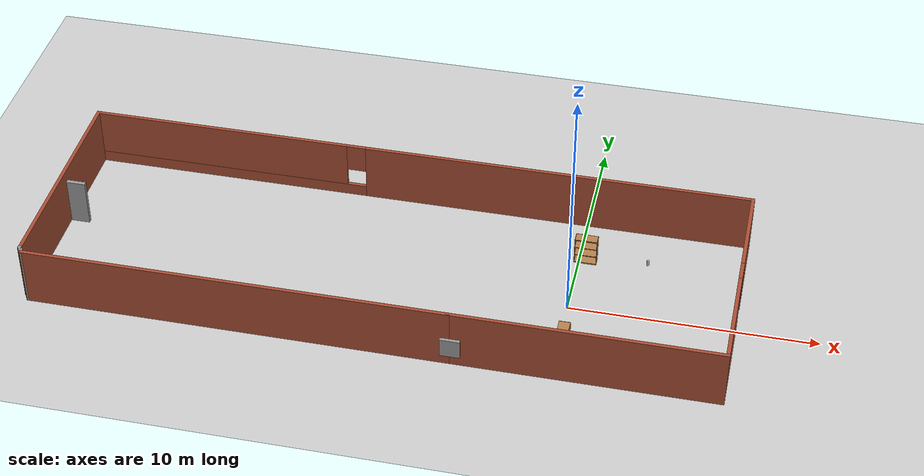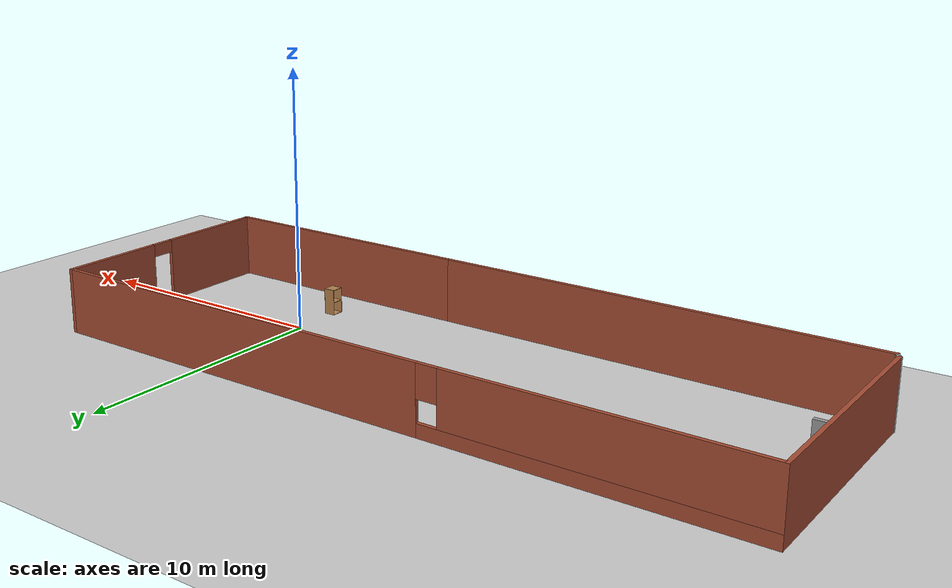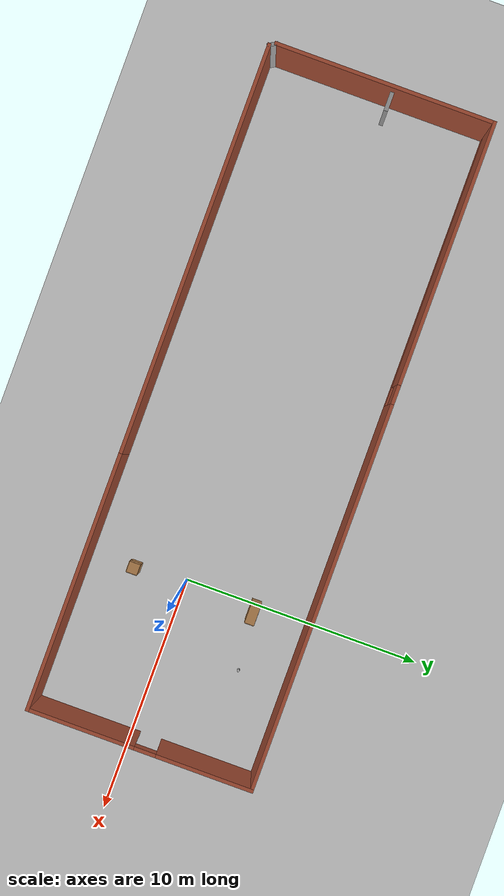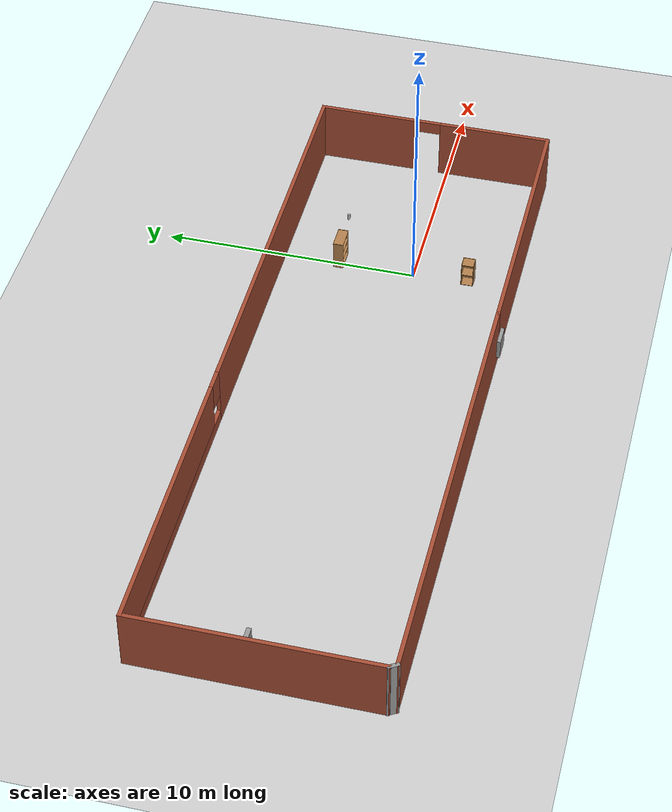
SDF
<sdf version="1.7">
 <world name="default">
  <light name="sun" type="directional">
   <pose>0 0 10 0 -0 0</pose>
   <diffuse>0.8 0.8 0.8 1</diffuse>
   <specular>0.2 0.2 0.2 1</specular>
   <attenuation>
    <range>1000</range>
    <constant>0.9</constant>
    <linear>0.01</linear>
    <quadratic>0.001</quadratic>
   </attenuation>
   <direction>-0.5 0.1 -0.9</direction>
   <spot><inner_angle>0</inner_angle><outer_angle>0</outer_angle><falloff>0</falloff></spot>
  </light>
  <model name="ground_plane">
   <static>1</static>
   <link name="link">
    <collision name="collision">
     <geometry><plane><normal>0 0 1</normal><size>100 100</size></plane></geometry>
     <surface>
      <contact><collide_bitmask>65535</collide_bitmask></contact>
      <friction><ode><mu>100</mu><mu2>50</mu2></ode></friction>
     </surface>
    </collision>
    <visual name="visual">
     <cast_shadows>0</cast_shadows>
     <geometry><plane><normal>0 0 1</normal><size>100 100</size></plane></geometry>
     <material>
      <script><uri>file://media/materials/scripts/gazebo.material</uri><name>Gazebo/Grey</name></script>
     </material>
    </visual>
   </link>
  </model>
  <gravity>0 0 -9.8</gravity>
  <magnetic_field>6e-06 2.3e-05 -4.2e-05</magnetic_field>
  <atmosphere type="adiabatic"/>
  <physics type="ode">
   <max_step_size>0.001</max_step_size>
   <real_time_factor>1</real_time_factor>
   <real_time_update_rate>1000</real_time_update_rate>
  </physics>
  <scene><ambient>0.4 0.4 0.4 1</ambient><background>0.7 0.7 0.7 1</background><shadows>1</shadows></scene>
  <audio><device>default</device></audio>
  <spherical_coordinates>
   <surface_model>EARTH_WGS84</surface_model>
   <latitude_deg>0</latitude_deg>
   <longitude_deg>0</longitude_deg>
   <elevation>0</elevation>
   <heading_deg>0</heading_deg>
  </spherical_coordinates>
  <model name="test">
   <pose>-7.3163 0.588552 0 0 -0 0</pose>
   <link name="Door_0">
    <collision name="Door_0_Collision">
     <geometry><box><size>0.9 0.17 2</size></box></geometry>
     <pose>0 0 1 0 -0 0</pose>
    </collision>
    <visual name="Door_0_Visual">
     <pose>0 0 1 0 -0 0</pose>
     <geometry><box><size>0.9 0.17 2</size></box></geometry>
     <material>
      <script><uri>file://media/materials/scripts/gazebo.material</uri><name>Gazebo/Grey</name></script>
     </material>
    </visual>
    <pose>-13.5036 0.511208 0 0 -0 0</pose>
   </link>
   <link name="Wall_3">
    <collision name="Wall_3_Collision">
     <geometry><box><size>10.75 0.15 2.5</size></box></geometry>
     <pose>0 0 1.25 0 -0 0</pose>
    </collision>
    <visual name="Wall_3_Visual">
     <pose>0 0 1.25 0 -0 0</pose>
     <geometry><box><size>10.75 0.15 2.5</size></box></geometry>
     <material>
      <script><uri>file://media/materials/scripts/gazebo.material</uri><name>Gazebo/Bricks</name></script>
      <ambient>1 1 1 1</ambient>
     </material>
     <meta><layer>0</layer></meta>
    </visual>
    <pose>8.63895 -4.66105 0 0 -0 0</pose>
   </link>
   <link name="Wall_4">
    <pose>13.9389 0.013949 0 0 -0 1.5708</pose>
    <visual name="Wall_4_Visual_0">
     <pose>-2.49296 0 1.25 0 -0 0</pose>
     <geometry><box><size>4.51407 0.15 2.5</size></box></geometry>
     <material>
      <script><uri>file://media/materials/scripts/gazebo.material</uri><name>Gazebo/Bricks</name></script>
      <ambient>1 1 1 1</ambient>
     </material>
     <meta><layer>0</layer></meta>
    </visual>
    <collision name="Wall_4_Collision_0">
     <geometry><box><size>4.51407 0.15 2.5</size></box></geometry>
     <pose>-2.49296 0 1.25 0 -0 0</pose>
    </collision>
    <visual name="Wall_4_Visual_1">
     <pose>2.70703 0 1.25 0 -0 0</pose>
     <geometry><box><size>4.08593 0.15 2.5</size></box></geometry>
     <material>
      <script><uri>file://media/materials/scripts/gazebo.material</uri><name>Gazebo/Bricks</name></script>
      <ambient>1 1 1 1</ambient>
     </material>
     <meta><layer>0</layer></meta>
    </visual>
    <collision name="Wall_4_Collision_1">
     <geometry><box><size>4.08593 0.15 2.5</size></box></geometry>
     <pose>2.70703 0 1.25 0 -0 0</pose>
    </collision>
    <visual name="Wall_4_Visual_2">
     <pose>0.214069 0 2.25 0 -0 0</pose>
     <geometry><box><size>0.9 0.15 0.5</size></box></geometry>
     <material>
      <script><uri>file://media/materials/scripts/gazebo.material</uri><name>Gazebo/Bricks</name></script>
      <ambient>1 1 1 1</ambient>
     </material>
     <meta><layer>0</layer></meta>
    </visual>
    <collision name="Wall_4_Collision_2">
     <geometry><box><size>0.9 0.15 0.5</size></box></geometry>
     <pose>0.214069 0 2.25 0 -0 0</pose>
    </collision>
   </link>
   <link name="Wall_5">
    <pose>0.013949 4.68895 0 0 -0 3.14159</pose>
    <visual name="Wall_5_Visual_0">
     <pose>-5.90274 0 1.25 0 -0 0</pose>
     <geometry><box><size>16.1945 0.15 2.5</size></box></geometry>
     <material>
      <script><uri>file://media/materials/scripts/gazebo.material</uri><name>Gazebo/Bricks</name></script>
      <ambient>1 1 1 1</ambient>
     </material>
     <meta><layer>0</layer></meta>
    </visual>
    <collision name="Wall_5_Collision_0">
     <geometry><box><size>16.1945 0.15 2.5</size></box></geometry>
     <pose>-5.90274 0 1.25 0 -0 0</pose>
    </collision>
    <visual name="Wall_5_Visual_1">
     <pose>8.09726 0 0.25 0 -0 0</pose>
     <geometry><box><size>11.8055 0.15 0.5</size></box></geometry>
     <material>
      <script><uri>file://media/materials/scripts/gazebo.material</uri><name>Gazebo/Bricks</name></script>
      <ambient>1 1 1 1</ambient>
     </material>
     <meta><layer>0</layer></meta>
    </visual>
    <collision name="Wall_5_Collision_1">
     <geometry><box><size>11.8055 0.15 0.5</size></box></geometry>
     <pose>8.09726 0 0.25 0 -0 0</pose>
    </collision>
    <visual name="Wall_5_Visual_2">
     <pose>8.49726 0 1.5 0 -0 0</pose>
     <geometry><box><size>11.0055 0.15 2</size></box></geometry>
     <material>
      <script><uri>file://media/materials/scripts/gazebo.material</uri><name>Gazebo/Bricks</name></script>
      <ambient>1 1 1 1</ambient>
     </material>
     <meta><layer>0</layer></meta>
    </visual>
    <collision name="Wall_5_Collision_2">
     <geometry><box><size>11.0055 0.15 2</size></box></geometry>
     <pose>8.49726 0 1.5 0 -0 0</pose>
    </collision>
    <visual name="Wall_5_Visual_3">
     <pose>2.59452 0 1.9 0 -0 0</pose>
     <geometry><box><size>0.8 0.15 1.2</size></box></geometry>
     <material>
      <script><uri>file://media/materials/scripts/gazebo.material</uri><name>Gazebo/Bricks</name></script>
      <ambient>1 1 1 1</ambient>
     </material>
     <meta><layer>0</layer></meta>
    </visual>
    <collision name="Wall_5_Collision_3">
     <geometry><box><size>0.8 0.15 1.2</size></box></geometry>
     <pose>2.59452 0 1.9 0 -0 0</pose>
    </collision>
   </link>
   <link name="Wall_6">
    <collision name="Wall_6_Collision">
     <geometry><box><size>9.25 0.15 2.5</size></box></geometry>
     <pose>0 0 1.25 0 -0 0</pose>
    </collision>
    <visual name="Wall_6_Visual">
     <pose>0 0 1.25 0 -0 0</pose>
     <geometry><box><size>9.25 0.15 2.5</size></box></geometry>
     <material>
      <script><uri>file://media/materials/scripts/gazebo.material</uri><name>Gazebo/Bricks</name></script>
      <ambient>1 1 1 1</ambient>
     </material>
     <meta><layer>0</layer></meta>
    </visual>
    <pose>-13.9111 0.138949 0 0 -0 -1.5708</pose>
   </link>
   <link name="Wall_8">
    <collision name="Wall_8_Collision">
     <geometry><box><size>17.25 0.15 2.5</size></box></geometry>
     <pose>0 0 1.25 0 -0 0</pose>
    </collision>
    <visual name="Wall_8_Visual">
     <pose>0 0 1.25 0 -0 0</pose>
     <geometry><box><size>17.25 0.15 2.5</size></box></geometry>
     <material>
      <script><uri>file://media/materials/scripts/gazebo.material</uri><name>Gazebo/Bricks</name></script>
      <ambient>1 1 1 1</ambient>
     </material>
     <meta><layer>0</layer></meta>
    </visual>
    <pose>-5.21105 -4.66105 0 0 -0 3.14159</pose>
   </link>
   <link name="Wall_9">
    <collision name="Wall_9_Collision">
     <geometry><box><size>0.441548 0.15 2.5</size></box></geometry>
     <pose>0 0 1.25 0 -0 0</pose>
    </collision>
    <visual name="Wall_9_Visual">
     <pose>0 0 1.25 0 -0 0</pose>
     <geometry><box><size>0.441548 0.15 2.5</size></box></geometry>
     <material>
      <script><uri>file://media/materials/scripts/gazebo.material</uri><name>Gazebo/Grey</name></script>
      <ambient>1 1 1 1</ambient>
     </material>
     <meta><layer>0</layer></meta>
    </visual>
    <pose>-13.8361 -4.53605 0 0 -0 2.11122</pose>
   </link>
   <link name="Window_1">
    <collision name="Window_1_Collision">
     <geometry><box><size>0.8 0.17 0.8</size></box></geometry>
     <pose>0 0 0.4 0 -0 0</pose>
    </collision>
    <visual name="Window_1_Visual">
     <pose>0 0 0.4 0 -0 0</pose>
     <geometry><box><size>0.8 0.17 0.8</size></box></geometry>
     <material>
      <script><uri>file://media/materials/scripts/gazebo.material</uri><name>Gazebo/Grey</name></script>
     </material>
    </visual>
    <pose>3.44731 -4.78847 0.5 0 -0 0</pose>
   </link>
   <static>1</static>
  </model>
  <model name="bookshelf">
   <static>1</static>
   <link name="link">
    <inertial><mass>1</mass></inertial>
    <collision name="back">
     <pose>0 0.005 0.6 0 -0 0</pose>
     <geometry><box><size>0.9 0.01 1.2</size></box></geometry>
    </collision>
    <visual name="visual1">
     <pose>0 0.005 0.6 0 -0 0</pose>
     <geometry><box><size>0.9 0.01 1.2</size></box></geometry>
     <material>
      <script><uri>file://media/materials/scripts/gazebo.material</uri><name>Gazebo/Wood</name></script>
     </material>
    </visual>
    <collision name="left_side">
     <pose>0.45 -0.195 0.6 0 -0 0</pose>
     <geometry><box><size>0.02 0.4 1.2</size></box></geometry>
    </collision>
    <visual name="visual2">
     <pose>0.45 -0.195 0.6 0 -0 0</pose>
     <geometry><box><size>0.02 0.4 1.2</size></box></geometry>
     <material>
      <script><uri>file://media/materials/scripts/gazebo.material</uri><name>Gazebo/Wood</name></script>
     </material>
    </visual>
    <collision name="right_side">
     <pose>-0.45 -0.195 0.6 0 -0 0</pose>
     <geometry><box><size>0.02 0.4 1.2</size></box></geometry>
    </collision>
    <visual name="visual3">
     <pose>-0.45 -0.195 0.6 0 -0 0</pose>
     <geometry><box><size>0.02 0.4 1.2</size></box></geometry>
     <material>
      <script><uri>file://media/materials/scripts/gazebo.material</uri><name>Gazebo/Wood</name></script>
     </material>
    </visual>
    <collision name="bottom">
     <pose>0 -0.195 0.03 0 -0 0</pose>
     <geometry><box><size>0.88 0.4 0.06</size></box></geometry>
    </collision>
    <visual name="visual4">
     <pose>0 -0.195 0.03 0 -0 0</pose>
     <geometry><box><size>0.88 0.4 0.06</size></box></geometry>
     <material>
      <script><uri>file://media/materials/scripts/gazebo.material</uri><name>Gazebo/Wood</name></script>
     </material>
    </visual>
    <collision name="top">
     <pose>0 -0.195 1.19 0 -0 0</pose>
     <geometry><box><size>0.88 0.4 0.02</size></box></geometry>
    </collision>
    <visual name="visual5">
     <pose>0 -0.195 1.19 0 -0 0</pose>
     <geometry><box><size>0.88 0.4 0.02</size></box></geometry>
     <material>
      <script><uri>file://media/materials/scripts/gazebo.material</uri><name>Gazebo/Wood</name></script>
     </material>
    </visual>
    <collision name="low_shelf">
     <pose>0 -0.195 0.43 0 -0 0</pose>
     <geometry><box><size>0.88 0.4 0.02</size></box></geometry>
    </collision>
    <visual name="visual6">
     <pose>0 -0.195 0.43 0 -0 0</pose>
     <geometry><box><size>0.88 0.4 0.02</size></box></geometry>
     <material>
      <script><uri>file://media/materials/scripts/gazebo.material</uri><name>Gazebo/Wood</name></script>
     </material>
    </visual>
    <collision name="high_shelf">
     <pose>0 -0.195 0.8 0 -0 0</pose>
     <geometry><box><size>0.88 0.4 0.02</size></box></geometry>
    </collision>
    <visual name="visual7">
     <pose>0 -0.195 0.8 0 -0 0</pose>
     <geometry><box><size>0.88 0.4 0.02</size></box></geometry>
     <material>
      <script><uri>file://media/materials/scripts/gazebo.material</uri><name>Gazebo/Wood</name></script>
     </material>
    </visual>
   </link>
   <pose>0.254645 3.20167 0 0 -0 0</pose>
  </model>
  <model name="beer">
   <link name="link">
    <pose>0 0 0.115 0 -0 0</pose>
    <inertial>
     <mass>0.39</mass>
     <inertia><ixx>0.00058</ixx><ixy>0</ixy><ixz>0</ixz><iyy>0.00058</iyy><iyz>0</iyz><izz>0.00019</izz></inertia>
    </inertial>
    <collision name="collision">
     <geometry><cylinder><radius>0.055</radius><length>0.23</length></cylinder></geometry>
    </collision>
    <visual name="visual">
     <geometry><cylinder><radius>0.055</radius><length>0.23</length></cylinder></geometry>
     <material>
      <script>
       <uri>model://beer/materials/scripts</uri>
       <uri>model://beer/materials/textures</uri>
       <name>Beer/Diffuse</name>
      </script>
     </material>
    </visual>
   </link>
   <pose>2.77928 3.2788 -3e-06 1e-06 -0 -4e-06</pose>
  </model>
  <model name="cabinet">
   <static>1</static>
   <link name="cabinet_bottom_plate">
    <inertial>
     <pose>0 0 -1 0 -0 0</pose>
     <inertia><ixx>2.05</ixx><ixy>0</ixy><ixz>0</ixz><iyy>2.05</iyy><iyz>0</iyz><izz>2.05</izz></inertia>
     <mass>25</mass>
    </inertial>
    <collision name="cabinet_bottom_plate_geom">
     <pose>0 0 0.01 0 -0 0</pose>
     <geometry><box><size>0.45 0.45 0.02</size></box></geometry>
    </collision>
    <visual name="cabinet_bottom_plate_geom_visual">
     <pose>0 0 0.01 0 -0 0</pose>
     <geometry><box><size>0.45 0.45 0.02</size></box></geometry>
     <material>
      <script><uri>file://media/materials/scripts/gazebo.material</uri><name>Gazebo/Wood</name></script>
     </material>
    </visual>
    <collision name="cabinet_bottom_plate_geom_cabinet_back_plate">
     <pose>0.235 0 0.51 0 -0 0</pose>
     <geometry><box><size>0.02 0.45 1.02</size></box></geometry>
    </collision>
    <visual name="cabinet_bottom_plate_geom_cabinet_back_plate_visual">
     <pose>0.235 0 0.51 0 -0 0</pose>
     <geometry><box><size>0.02 0.45 1.02</size></box></geometry>
     <material>
      <script><uri>file://media/materials/scripts/gazebo.material</uri><name>Gazebo/Wood</name></script>
     </material>
    </visual>
    <collision name="cabinet_bottom_plate_geom_cabinet_left_plate">
     <pose>0 0.235 0.51 0 -0 0</pose>
     <geometry><box><size>0.45 0.02 1.02</size></box></geometry>
    </collision>
    <visual name="cabinet_bottom_plate_geom_cabinet_left_plate_visual">
     <pose>0 0.235 0.51 0 -0 0</pose>
     <geometry><box><size>0.45 0.02 1.02</size></box></geometry>
     <material>
      <script><uri>file://media/materials/scripts/gazebo.material</uri><name>Gazebo/Wood</name></script>
     </material>
    </visual>
    <collision name="cabinet_bottom_plate_geom_cabinet_middle_plate">
     <pose>0 0 0.51 0 -0 0</pose>
     <geometry><box><size>0.45 0.45 0.02</size></box></geometry>
    </collision>
    <visual name="cabinet_bottom_plate_geom_cabinet_middle_plate_visual">
     <pose>0 0 0.51 0 -0 0</pose>
     <geometry><box><size>0.45 0.45 0.02</size></box></geometry>
     <material>
      <script><uri>file://media/materials/scripts/gazebo.material</uri><name>Gazebo/Wood</name></script>
     </material>
    </visual>
    <collision name="cabinet_bottom_plate_geom_cabinet_right_plate">
     <pose>0 -0.235 0.51 0 -0 0</pose>
     <geometry><box><size>0.45 0.02 1.02</size></box></geometry>
    </collision>
    <visual name="cabinet_bottom_plate_geom_cabinet_right_plate_visual">
     <pose>0 -0.235 0.51 0 -0 0</pose>
     <geometry><box><size>0.45 0.02 1.02</size></box></geometry>
     <material>
      <script><uri>file://media/materials/scripts/gazebo.material</uri><name>Gazebo/Wood</name></script>
     </material>
    </visual>
    <collision name="cabinet_bottom_plate_geom_cabinet_top_plate">
     <pose>0 0 1.01 0 -0 0</pose>
     <geometry><box><size>0.45 0.45 0.02</size></box></geometry>
    </collision>
    <visual name="cabinet_bottom_plate_geom_cabinet_top_plate_visual">
     <pose>0 0 1.01 0 -0 0</pose>
     <geometry><box><size>0.45 0.45 0.02</size></box></geometry>
     <material>
      <script><uri>file://media/materials/scripts/gazebo.material</uri><name>Gazebo/Wood</name></script>
     </material>
    </visual>
   </link>
   <pose>0.194584 -2.16925 0 0 -0 0</pose>
  </model>
 </world>
</sdf>
